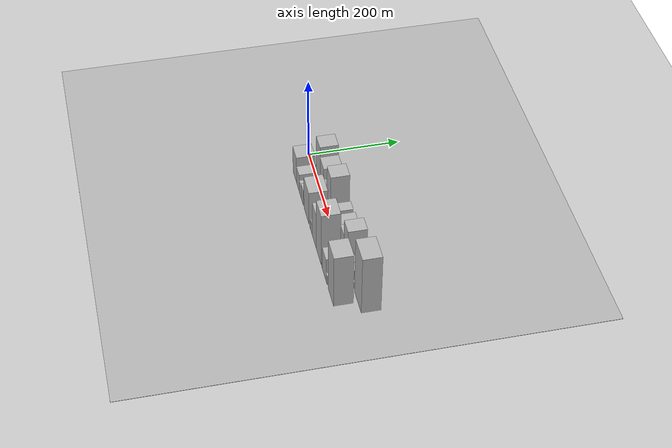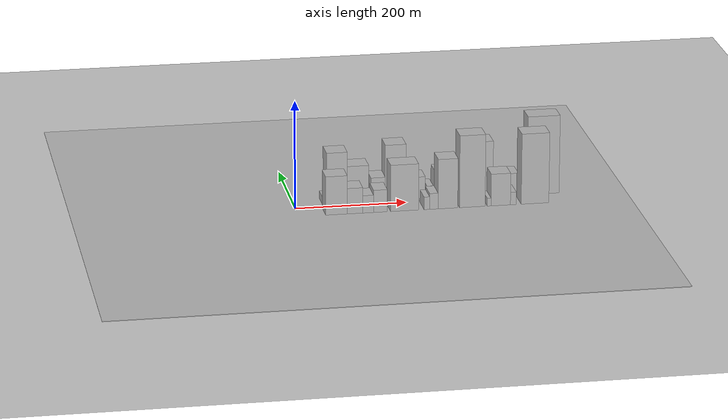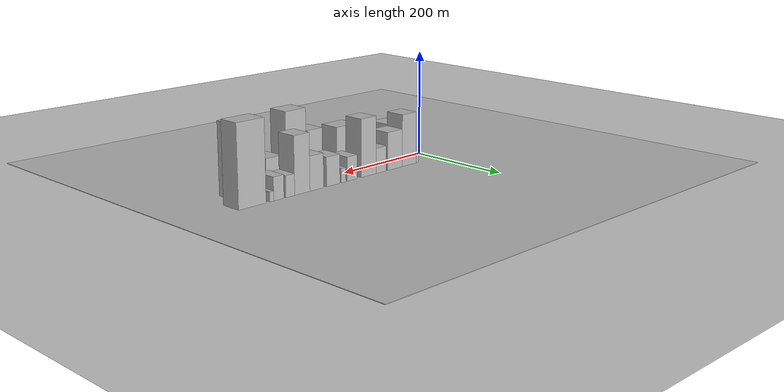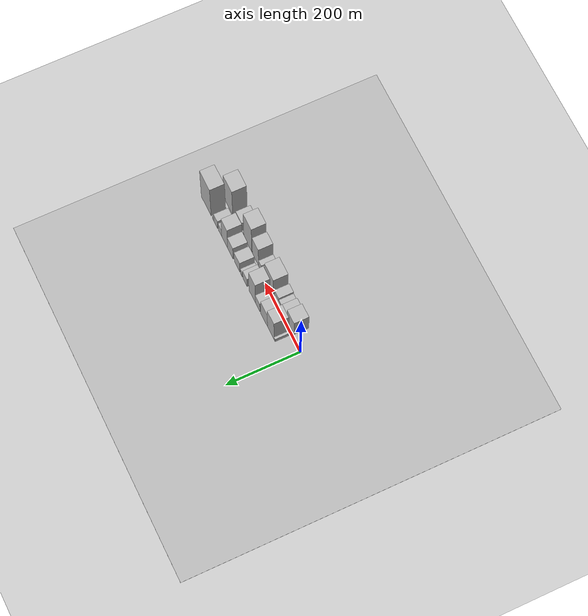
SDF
<?xml version="1.0" encoding="utf-8"?>

<sdf version="1.6">

   <world name="default">

      <gui fullscreen="0">

         <camera name="user_camera">

            <pose>-15 0 4.57585 0 0 0</pose>

            <view_controller>orbit</view_controller>

         </camera>

      </gui>

      <scene>

         <sky>

           <clouds>

             <speed>12</speed>

           </clouds>

         </sky>

         <ambient>0.4 0.4 0.4 1</ambient>

         <background>0.7 0.7 0.7 1</background>

         <shadows>1</shadows>

      </scene>

      <gravity>0 0 -9.8066</gravity>

      <magnetic_field>6e-06 2.3e-05 -4.2e-05</magnetic_field>

      <physics default="0" name="default_physics" type="ode">

         <ode>

            <solver>

               <type>quick</type>

               <iters>10</iters>

               <sor>1.0</sor>

               <use_dynamic_moi_rescaling>0</use_dynamic_moi_rescaling>

            </solver>

            <constraints>

               <cfm>0</cfm>

               <erp>0.2</erp>

               <contact_max_correcting_vel>100</contact_max_correcting_vel>

               <contact_surface_layer>0.001</contact_surface_layer>

            </constraints>

         </ode>

         <max_step_size>0.004</max_step_size>

         <real_time_factor>1</real_time_factor>

         <real_time_update_rate>250</real_time_update_rate>

      </physics>

      <light name="sun" type="directional">

         <cast_shadows>1</cast_shadows>

         <pose>0 0 10 0 0 0</pose>

         <diffuse>0.8 0.8 0.8 1</diffuse>

         <specular>0.2 0.2 0.2 1</specular>

         <attenuation>

            <range>1000</range>

            <constant>0.9</constant>

            <linear>0.01</linear>

            <quadratic>0.001</quadratic>

         </attenuation>

         <direction>-0.5 0.1 -0.9</direction>

      </light>

      <include>

         <name>ground_plane_1</name>

         <uri>model://HANNAS_ground_plane</uri>

         <pose>0 0 0  0 0 0</pose>

      </include>

      <include>

         <name>ground_plane_2</name>

         <uri>model://HANNAS_ground_plane</uri>

         <pose>100 0 0  0 0 0</pose>

      </include>

      <model name="building_1">

         <static>1</static>

         <pose frame="">53.3067 24.5000 0 0.000000 0.000000 1.570796</pose>

         <link name="link">

            <pose frame="">0 0 7.50 0 0 0</pose>

            <collision name="collision">

               <geometry>

                  <box>

                     <size>40.0000 6.6133 15.0000</size>

                  </box>

               </geometry>

               <max_contacts>10</max_contacts>

               <surface>

                  <contact>

                     <ode/>

                  </contact>

                  <bounce/>

                  <friction>

                     <torsional>

                        <ode/>

                     </torsional>

                     <ode/>

                  </friction>

               </surface>

            </collision>

            <visual name="visual">

               <cast_shadows>0</cast_shadows>

               <geometry>

                  <box>

                     <size>40.0000 6.6133 15.0000</size>

                  </box>

               </geometry>

               <material>

                  <script>

                     <uri>model://HANNAS_wall/materials/scripts</uri>

                     <uri>model://HANNAS_wall/materials/textures</uri>

                     <name>vrc/HANNAS_wall</name>

                  </script>

               </material>

            </visual>

            <self_collide>0</self_collide>

            <enable_wind>0</enable_wind>

            <kinematic>0</kinematic>

         </link>

      </model>

      <model name="building_2">

         <static>1</static>

         <pose frame="">75.3130 24.5000 0 0.000000 0.000000 1.570796</pose>

         <link name="link">

            <pose frame="">0 0 49.50 0 0 0</pose>

            <collision name="collision">

               <geometry>

                  <box>

                     <size>40.0000 37.3995 99.0000</size>

                  </box>

               </geometry>

               <max_contacts>10</max_contacts>

               <surface>

                  <contact>

                     <ode/>

                  </contact>

                  <bounce/>

                  <friction>

                     <torsional>

                        <ode/>

                     </torsional>

                     <ode/>

                  </friction>

               </surface>

            </collision>

            <visual name="visual">

               <cast_shadows>0</cast_shadows>

               <geometry>

                  <box>

                     <size>40.0000 37.3995 99.0000</size>

                  </box>

               </geometry>

               <material>

                  <script>

                     <uri>model://HANNAS_wall/materials/scripts</uri>

                     <uri>model://HANNAS_wall/materials/textures</uri>

                     <name>vrc/HANNAS_wall</name>

                  </script>

               </material>

            </visual>

            <self_collide>0</self_collide>

            <enable_wind>0</enable_wind>

            <kinematic>0</kinematic>

         </link>

      </model>

      <model name="building_3">

         <static>1</static>

         <pose frame="">113.3549 24.5000 0 0.000000 0.000000 1.570796</pose>

         <link name="link">

            <pose frame="">0 0 36.00 0 0 0</pose>

            <collision name="collision">

               <geometry>

                  <box>

                     <size>40.0000 38.6843 72.0000</size>

                  </box>

               </geometry>

               <max_contacts>10</max_contacts>

               <surface>

                  <contact>

                     <ode/>

                  </contact>

                  <bounce/>

                  <friction>

                     <torsional>

                        <ode/>

                     </torsional>

                     <ode/>

                  </friction>

               </surface>

            </collision>

            <visual name="visual">

               <cast_shadows>0</cast_shadows>

               <geometry>

                  <box>

                     <size>40.0000 38.6843 72.0000</size>

                  </box>

               </geometry>

               <material>

                  <script>

                     <uri>model://HANNAS_wall/materials/scripts</uri>

                     <uri>model://HANNAS_wall/materials/textures</uri>

                     <name>vrc/HANNAS_wall</name>

                  </script>

               </material>

            </visual>

            <self_collide>0</self_collide>

            <enable_wind>0</enable_wind>

            <kinematic>0</kinematic>

         </link>

      </model>

      <model name="building_4">

         <static>1</static>

         <pose frame="">149.6819 24.5000 0 0.000000 0.000000 1.570796</pose>

         <link name="link">

            <pose frame="">0 0 24.00 0 0 0</pose>

            <collision name="collision">

               <geometry>

                  <box>

                     <size>40.0000 25.9696 48.0000</size>

                  </box>

               </geometry>

               <max_contacts>10</max_contacts>

               <surface>

                  <contact>

                     <ode/>

                  </contact>

                  <bounce/>

                  <friction>

                     <torsional>

                        <ode/>

                     </torsional>

                     <ode/>

                  </friction>

               </surface>

            </collision>

            <visual name="visual">

               <cast_shadows>0</cast_shadows>

               <geometry>

                  <box>

                     <size>40.0000 25.9696 48.0000</size>

                  </box>

               </geometry>

               <material>

                  <script>

                     <uri>model://HANNAS_wall/materials/scripts</uri>

                     <uri>model://HANNAS_wall/materials/textures</uri>

                     <name>vrc/HANNAS_wall</name>

                  </script>

               </material>

            </visual>

            <self_collide>0</self_collide>

            <enable_wind>0</enable_wind>

            <kinematic>0</kinematic>

         </link>

      </model>

      <model name="building_5">

         <static>1</static>

         <pose frame="">181.3449 24.5000 0 0.000000 0.000000 1.570796</pose>

         <link name="link">

            <pose frame="">0 0 54.00 0 0 0</pose>

            <collision name="collision">

               <geometry>

                  <box>

                     <size>40.0000 37.3564 108.0000</size>

                  </box>

               </geometry>

               <max_contacts>10</max_contacts>

               <surface>

                  <contact>

                     <ode/>

                  </contact>

                  <bounce/>

                  <friction>

                     <torsional>

                        <ode/>

                     </torsional>

                     <ode/>

                  </friction>

               </surface>

            </collision>

            <visual name="visual">

               <cast_shadows>0</cast_shadows>

               <geometry>

                  <box>

                     <size>40.0000 37.3564 108.0000</size>

                  </box>

               </geometry>

               <material>

                  <script>

                     <uri>model://HANNAS_wall/materials/scripts</uri>

                     <uri>model://HANNAS_wall/materials/textures</uri>

                     <name>vrc/HANNAS_wall</name>

                  </script>

               </material>

            </visual>

            <self_collide>0</self_collide>

            <enable_wind>0</enable_wind>

            <kinematic>0</kinematic>

         </link>

      </model>

      <model name="building_6">

         <static>1</static>

         <pose frame="">222.6296 24.5000 0 0.000000 0.000000 1.570796</pose>

         <link name="link">

            <pose frame="">0 0 22.50 0 0 0</pose>

            <collision name="collision">

               <geometry>

                  <box>

                     <size>40.0000 25.2129 45.0000</size>

                  </box>

               </geometry>

               <max_contacts>10</max_contacts>

               <surface>

                  <contact>

                     <ode/>

                  </contact>

                  <bounce/>

                  <friction>

                     <torsional>

                        <ode/>

                     </torsional>

                     <ode/>

                  </friction>

               </surface>

            </collision>

            <visual name="visual">

               <cast_shadows>0</cast_shadows>

               <geometry>

                  <box>

                     <size>40.0000 25.2129 45.0000</size>

                  </box>

               </geometry>

               <material>

                  <script>

                     <uri>model://HANNAS_wall/materials/scripts</uri>

                     <uri>model://HANNAS_wall/materials/textures</uri>

                     <name>vrc/HANNAS_wall</name>

                  </script>

               </material>

            </visual>

            <self_collide>0</self_collide>

            <enable_wind>0</enable_wind>

            <kinematic>0</kinematic>

         </link>

      </model>

      <model name="building_7">

         <static>1</static>

         <pose frame="">243.9580 24.5000 0 0.000000 0.000000 1.570796</pose>

         <link name="link">

            <pose frame="">0 0 13.50 0 0 0</pose>

            <collision name="collision">

               <geometry>

                  <box>

                     <size>40.0000 11.4440 27.0000</size>

                  </box>

               </geometry>

               <max_contacts>10</max_contacts>

               <surface>

                  <contact>

                     <ode/>

                  </contact>

                  <bounce/>

                  <friction>

                     <torsional>

                        <ode/>

                     </torsional>

                     <ode/>

                  </friction>

               </surface>

            </collision>

            <visual name="visual">

               <cast_shadows>0</cast_shadows>

               <geometry>

                  <box>

                     <size>40.0000 11.4440 27.0000</size>

                  </box>

               </geometry>

               <material>

                  <script>

                     <uri>model://HANNAS_wall/materials/scripts</uri>

                     <uri>model://HANNAS_wall/materials/textures</uri>

                     <name>vrc/HANNAS_wall</name>

                  </script>

               </material>

            </visual>

            <self_collide>0</self_collide>

            <enable_wind>0</enable_wind>

            <kinematic>0</kinematic>

         </link>

      </model>

      <model name="building_8">

         <static>1</static>

         <pose frame="">268.6321 24.5000 0 0.000000 0.000000 1.570796</pose>

         <link name="link">

            <pose frame="">0 0 27.00 0 0 0</pose>

            <collision name="collision">

               <geometry>

                  <box>

                     <size>40.0000 31.9043 54.0000</size>

                  </box>

               </geometry>

               <max_contacts>10</max_contacts>

               <surface>

                  <contact>

                     <ode/>

                  </contact>

                  <bounce/>

                  <friction>

                     <torsional>

                        <ode/>

                     </torsional>

                     <ode/>

                  </friction>

               </surface>

            </collision>

            <visual name="visual">

               <cast_shadows>0</cast_shadows>

               <geometry>

                  <box>

                     <size>40.0000 31.9043 54.0000</size>

                  </box>

               </geometry>

               <material>

                  <script>

                     <uri>model://HANNAS_wall/materials/scripts</uri>

                     <uri>model://HANNAS_wall/materials/textures</uri>

                     <name>vrc/HANNAS_wall</name>

                  </script>

               </material>

            </visual>

            <self_collide>0</self_collide>

            <enable_wind>0</enable_wind>

            <kinematic>0</kinematic>

         </link>

      </model>

      <model name="building_9">

         <static>1</static>

         <pose frame="">307.5915 24.5000 0 0.000000 0.000000 1.570796</pose>

         <link name="link">

            <pose frame="">0 0 31.50 0 0 0</pose>

            <collision name="collision">

               <geometry>

                  <box>

                     <size>40.0000 32.0143 63.0000</size>

                  </box>

               </geometry>

               <max_contacts>10</max_contacts>

               <surface>

                  <contact>

                     <ode/>

                  </contact>

                  <bounce/>

                  <friction>

                     <torsional>

                        <ode/>

                     </torsional>

                     <ode/>

                  </friction>

               </surface>

            </collision>

            <visual name="visual">

               <cast_shadows>0</cast_shadows>

               <geometry>

                  <box>

                     <size>40.0000 32.0143 63.0000</size>

                  </box>

               </geometry>

               <material>

                  <script>

                     <uri>model://HANNAS_wall/materials/scripts</uri>

                     <uri>model://HANNAS_wall/materials/textures</uri>

                     <name>vrc/HANNAS_wall</name>

                  </script>

               </material>

            </visual>

            <self_collide>0</self_collide>

            <enable_wind>0</enable_wind>

            <kinematic>0</kinematic>

         </link>

      </model>

      <model name="building_10">

         <static>1</static>

         <pose frame="">340.9889 24.5000 0 0.000000 0.000000 1.570796</pose>

         <link name="link">

            <pose frame="">0 0 52.50 0 0 0</pose>

            <collision name="collision">

               <geometry>

                  <box>

                     <size>40.0000 34.7806 105.0000</size>

                  </box>

               </geometry>

               <max_contacts>10</max_contacts>

               <surface>

                  <contact>

                     <ode/>

                  </contact>

                  <bounce/>

                  <friction>

                     <torsional>

                        <ode/>

                     </torsional>

                     <ode/>

                  </friction>

               </surface>

            </collision>

            <visual name="visual">

               <cast_shadows>0</cast_shadows>

               <geometry>

                  <box>

                     <size>40.0000 34.7806 105.0000</size>

                  </box>

               </geometry>

               <material>

                  <script>

                     <uri>model://HANNAS_wall/materials/scripts</uri>

                     <uri>model://HANNAS_wall/materials/textures</uri>

                     <name>vrc/HANNAS_wall</name>

                  </script>

               </material>

            </visual>

            <self_collide>0</self_collide>

            <enable_wind>0</enable_wind>

            <kinematic>0</kinematic>

         </link>

      </model>

      <model name="building_11">

         <static>1</static>

         <pose frame="">368.2627 24.5000 0 0.000000 0.000000 1.570796</pose>

         <link name="link">

            <pose frame="">0 0 19.50 0 0 0</pose>

            <collision name="collision">

               <geometry>

                  <box>

                     <size>40.0000 19.7670 39.0000</size>

                  </box>

               </geometry>

               <max_contacts>10</max_contacts>

               <surface>

                  <contact>

                     <ode/>

                  </contact>

                  <bounce/>

                  <friction>

                     <torsional>

                        <ode/>

                     </torsional>

                     <ode/>

                  </friction>

               </surface>

            </collision>

            <visual name="visual">

               <cast_shadows>0</cast_shadows>

               <geometry>

                  <box>

                     <size>40.0000 19.7670 39.0000</size>

                  </box>

               </geometry>

               <material>

                  <script>

                     <uri>model://HANNAS_wall/materials/scripts</uri>

                     <uri>model://HANNAS_wall/materials/textures</uri>

                     <name>vrc/HANNAS_wall</name>

                  </script>

               </material>

            </visual>

            <self_collide>0</self_collide>

            <enable_wind>0</enable_wind>

            <kinematic>0</kinematic>

         </link>

      </model>

      <model name="building_12">

         <static>1</static>

         <pose frame="">393.4490 24.5000 0 0.000000 0.000000 1.570796</pose>

         <link name="link">

            <pose frame="">0 0 21.00 0 0 0</pose>

            <collision name="collision">

               <geometry>

                  <box>

                     <size>40.0000 22.6056 42.0000</size>

                  </box>

               </geometry>

               <max_contacts>10</max_contacts>

               <surface>

                  <contact>

                     <ode/>

                  </contact>

                  <bounce/>

                  <friction>

                     <torsional>

                        <ode/>

                     </torsional>

                     <ode/>

                  </friction>

               </surface>

            </collision>

            <visual name="visual">

               <cast_shadows>0</cast_shadows>

               <geometry>

                  <box>

                     <size>40.0000 22.6056 42.0000</size>

                  </box>

               </geometry>

               <material>

                  <script>

                     <uri>model://HANNAS_wall/materials/scripts</uri>

                     <uri>model://HANNAS_wall/materials/textures</uri>

                     <name>vrc/HANNAS_wall</name>

                  </script>

               </material>

            </visual>

            <self_collide>0</self_collide>

            <enable_wind>0</enable_wind>

            <kinematic>0</kinematic>

         </link>

      </model>

      <model name="building_13">

         <static>1</static>

         <pose frame="">408.9536 24.5000 0 0.000000 0.000000 1.570796</pose>

         <link name="link">

            <pose frame="">0 0 9.00 0 0 0</pose>

            <collision name="collision">

               <geometry>

                  <box>

                     <size>40.0000 8.4036 18.0000</size>

                  </box>

               </geometry>

               <max_contacts>10</max_contacts>

               <surface>

                  <contact>

                     <ode/>

                  </contact>

                  <bounce/>

                  <friction>

                     <torsional>

                        <ode/>

                     </torsional>

                     <ode/>

                  </friction>

               </surface>

            </collision>

            <visual name="visual">

               <cast_shadows>0</cast_shadows>

               <geometry>

                  <box>

                     <size>40.0000 8.4036 18.0000</size>

                  </box>

               </geometry>

               <material>

                  <script>

                     <uri>model://HANNAS_wall/materials/scripts</uri>

                     <uri>model://HANNAS_wall/materials/textures</uri>

                     <name>vrc/HANNAS_wall</name>

                  </script>

               </material>

            </visual>

            <self_collide>0</self_collide>

            <enable_wind>0</enable_wind>

            <kinematic>0</kinematic>

         </link>

      </model>

      <model name="building_14">

         <static>1</static>

         <pose frame="">450.2723 24.5000 0 0.000000 0.000000 1.570796</pose>

         <link name="link">

            <pose frame="">0 0 73.50 0 0 0</pose>

            <collision name="collision">

               <geometry>

                  <box>

                     <size>40.0000 58.2338 147.0000</size>

                  </box>

               </geometry>

               <max_contacts>10</max_contacts>

               <surface>

                  <contact>

                     <ode/>

                  </contact>

                  <bounce/>

                  <friction>

                     <torsional>

                        <ode/>

                     </torsional>

                     <ode/>

                  </friction>

               </surface>

            </collision>

            <visual name="visual">

               <cast_shadows>0</cast_shadows>

               <geometry>

                  <box>

                     <size>40.0000 58.2338 147.0000</size>

                  </box>

               </geometry>

               <material>

                  <script>

                     <uri>model://HANNAS_wall/materials/scripts</uri>

                     <uri>model://HANNAS_wall/materials/textures</uri>

                     <name>vrc/HANNAS_wall</name>

                  </script>

               </material>

            </visual>

            <self_collide>0</self_collide>

            <enable_wind>0</enable_wind>

            <kinematic>0</kinematic>

         </link>

      </model>

      <model name="building_15">

         <static>1</static>

         <pose frame="">66.4160 -24.5000 0 0.000000 0.000000 1.570796</pose>

         <link name="link">

            <pose frame="">0 0 36.00 0 0 0</pose>

            <collision name="collision">

               <geometry>

                  <box>

                     <size>40.0000 38.8320 72.0000</size>

                  </box>

               </geometry>

               <max_contacts>10</max_contacts>

               <surface>

                  <contact>

                     <ode/>

                  </contact>

                  <bounce/>

                  <friction>

                     <torsional>

                        <ode/>

                     </torsional>

                     <ode/>

                  </friction>

               </surface>

            </collision>

            <visual name="visual">

               <cast_shadows>0</cast_shadows>

               <geometry>

                  <box>

                     <size>40.0000 38.8320 72.0000</size>

                  </box>

               </geometry>

               <material>

                  <script>

                     <uri>model://HANNAS_wall/materials/scripts</uri>

                     <uri>model://HANNAS_wall/materials/textures</uri>

                     <name>vrc/HANNAS_wall</name>

                  </script>

               </material>

            </visual>

            <self_collide>0</self_collide>

            <enable_wind>0</enable_wind>

            <kinematic>0</kinematic>

         </link>

      </model>

      <model name="building_16">

         <static>1</static>

         <pose frame="">99.6574 -24.5000 0 0.000000 0.000000 1.570796</pose>

         <link name="link">

            <pose frame="">0 0 24.00 0 0 0</pose>

            <collision name="collision">

               <geometry>

                  <box>

                     <size>40.0000 27.6507 48.0000</size>

                  </box>

               </geometry>

               <max_contacts>10</max_contacts>

               <surface>

                  <contact>

                     <ode/>

                  </contact>

                  <bounce/>

                  <friction>

                     <torsional>

                        <ode/>

                     </torsional>

                     <ode/>

                  </friction>

               </surface>

            </collision>

            <visual name="visual">

               <cast_shadows>0</cast_shadows>

               <geometry>

                  <box>

                     <size>40.0000 27.6507 48.0000</size>

                  </box>

               </geometry>

               <material>

                  <script>

                     <uri>model://HANNAS_wall/materials/scripts</uri>

                     <uri>model://HANNAS_wall/materials/textures</uri>

                     <name>vrc/HANNAS_wall</name>

                  </script>

               </material>

            </visual>

            <self_collide>0</self_collide>

            <enable_wind>0</enable_wind>

            <kinematic>0</kinematic>

         </link>

      </model>

      <model name="building_17">

         <static>1</static>

         <pose frame="">123.1968 -24.5000 0 0.000000 0.000000 1.570796</pose>

         <link name="link">

            <pose frame="">0 0 16.50 0 0 0</pose>

            <collision name="collision">

               <geometry>

                  <box>

                     <size>40.0000 19.4282 33.0000</size>

                  </box>

               </geometry>

               <max_contacts>10</max_contacts>

               <surface>

                  <contact>

                     <ode/>

                  </contact>

                  <bounce/>

                  <friction>

                     <torsional>

                        <ode/>

                     </torsional>

                     <ode/>

                  </friction>

               </surface>

            </collision>

            <visual name="visual">

               <cast_shadows>0</cast_shadows>

               <geometry>

                  <box>

                     <size>40.0000 19.4282 33.0000</size>

                  </box>

               </geometry>

               <material>

                  <script>

                     <uri>model://HANNAS_wall/materials/scripts</uri>

                     <uri>model://HANNAS_wall/materials/textures</uri>

                     <name>vrc/HANNAS_wall</name>

                  </script>

               </material>

            </visual>

            <self_collide>0</self_collide>

            <enable_wind>0</enable_wind>

            <kinematic>0</kinematic>

         </link>

      </model>

      <model name="building_18">

         <static>1</static>

         <pose frame="">145.2508 -24.5000 0 0.000000 0.000000 1.570796</pose>

         <link name="link">

            <pose frame="">0 0 21.00 0 0 0</pose>

            <collision name="collision">

               <geometry>

                  <box>

                     <size>40.0000 24.6797 42.0000</size>

                  </box>

               </geometry>

               <max_contacts>10</max_contacts>

               <surface>

                  <contact>

                     <ode/>

                  </contact>

                  <bounce/>

                  <friction>

                     <torsional>

                        <ode/>

                     </torsional>

                     <ode/>

                  </friction>

               </surface>

            </collision>

            <visual name="visual">

               <cast_shadows>0</cast_shadows>

               <geometry>

                  <box>

                     <size>40.0000 24.6797 42.0000</size>

                  </box>

               </geometry>

               <material>

                  <script>

                     <uri>model://HANNAS_wall/materials/scripts</uri>

                     <uri>model://HANNAS_wall/materials/textures</uri>

                     <name>vrc/HANNAS_wall</name>

                  </script>

               </material>

            </visual>

            <self_collide>0</self_collide>

            <enable_wind>0</enable_wind>

            <kinematic>0</kinematic>

         </link>

      </model>

      <model name="building_19">

         <static>1</static>

         <pose frame="">188.7232 -24.5000 0 0.000000 0.000000 1.570796</pose>

         <link name="link">

            <pose frame="">0 0 43.50 0 0 0</pose>

            <collision name="collision">

               <geometry>

                  <box>

                     <size>40.0000 50.2651 87.0000</size>

                  </box>

               </geometry>

               <max_contacts>10</max_contacts>

               <surface>

                  <contact>

                     <ode/>

                  </contact>

                  <bounce/>

                  <friction>

                     <torsional>

                        <ode/>

                     </torsional>

                     <ode/>

                  </friction>

               </surface>

            </collision>

            <visual name="visual">

               <cast_shadows>0</cast_shadows>

               <geometry>

                  <box>

                     <size>40.0000 50.2651 87.0000</size>

                  </box>

               </geometry>

               <material>

                  <script>

                     <uri>model://HANNAS_wall/materials/scripts</uri>

                     <uri>model://HANNAS_wall/materials/textures</uri>

                     <name>vrc/HANNAS_wall</name>

                  </script>

               </material>

            </visual>

            <self_collide>0</self_collide>

            <enable_wind>0</enable_wind>

            <kinematic>0</kinematic>

         </link>

      </model>

      <model name="building_20">

         <static>1</static>

         <pose frame="">228.8500 -24.5000 0 0.000000 0.000000 1.570796</pose>

         <link name="link">

            <pose frame="">0 0 12.00 0 0 0</pose>

            <collision name="collision">

               <geometry>

                  <box>

                     <size>40.0000 9.9884 24.0000</size>

                  </box>

               </geometry>

               <max_contacts>10</max_contacts>

               <surface>

                  <contact>

                     <ode/>

                  </contact>

                  <bounce/>

                  <friction>

                     <torsional>

                        <ode/>

                     </torsional>

                     <ode/>

                  </friction>

               </surface>

            </collision>

            <visual name="visual">

               <cast_shadows>0</cast_shadows>

               <geometry>

                  <box>

                     <size>40.0000 9.9884 24.0000</size>

                  </box>

               </geometry>

               <material>

                  <script>

                     <uri>model://HANNAS_wall/materials/scripts</uri>

                     <uri>model://HANNAS_wall/materials/textures</uri>

                     <name>vrc/HANNAS_wall</name>

                  </script>

               </material>

            </visual>

            <self_collide>0</self_collide>

            <enable_wind>0</enable_wind>

            <kinematic>0</kinematic>

         </link>

      </model>

      <model name="building_21">

         <static>1</static>

         <pose frame="">241.5247 -24.5000 0 0.000000 0.000000 1.570796</pose>

         <link name="link">

            <pose frame="">0 0 15.00 0 0 0</pose>

            <collision name="collision">

               <geometry>

                  <box>

                     <size>40.0000 15.3610 30.0000</size>

                  </box>

               </geometry>

               <max_contacts>10</max_contacts>

               <surface>

                  <contact>

                     <ode/>

                  </contact>

                  <bounce/>

                  <friction>

                     <torsional>

                        <ode/>

                     </torsional>

                     <ode/>

                  </friction>

               </surface>

            </collision>

            <visual name="visual">

               <cast_shadows>0</cast_shadows>

               <geometry>

                  <box>

                     <size>40.0000 15.3610 30.0000</size>

                  </box>

               </geometry>

               <material>

                  <script>

                     <uri>model://HANNAS_wall/materials/scripts</uri>

                     <uri>model://HANNAS_wall/materials/textures</uri>

                     <name>vrc/HANNAS_wall</name>

                  </script>

               </material>

            </visual>

            <self_collide>0</self_collide>

            <enable_wind>0</enable_wind>

            <kinematic>0</kinematic>

         </link>

      </model>

      <model name="building_22">

         <static>1</static>

         <pose frame="">267.0844 -24.5000 0 0.000000 0.000000 1.570796</pose>

         <link name="link">

            <pose frame="">0 0 46.50 0 0 0</pose>

            <collision name="collision">

               <geometry>

                  <box>

                     <size>40.0000 35.7584 93.0000</size>

                  </box>

               </geometry>

               <max_contacts>10</max_contacts>

               <surface>

                  <contact>

                     <ode/>

                  </contact>

                  <bounce/>

                  <friction>

                     <torsional>

                        <ode/>

                     </torsional>

                     <ode/>

                  </friction>

               </surface>

            </collision>

            <visual name="visual">

               <cast_shadows>0</cast_shadows>

               <geometry>

                  <box>

                     <size>40.0000 35.7584 93.0000</size>

                  </box>

               </geometry>

               <material>

                  <script>

                     <uri>model://HANNAS_wall/materials/scripts</uri>

                     <uri>model://HANNAS_wall/materials/textures</uri>

                     <name>vrc/HANNAS_wall</name>

                  </script>

               </material>

            </visual>

            <self_collide>0</self_collide>

            <enable_wind>0</enable_wind>

            <kinematic>0</kinematic>

         </link>

      </model>

      <model name="building_23">

         <static>1</static>

         <pose frame="">311.2142 -24.5000 0 0.000000 0.000000 1.570796</pose>

         <link name="link">

            <pose frame="">0 0 67.50 0 0 0</pose>

            <collision name="collision">

               <geometry>

                  <box>

                     <size>40.0000 46.5012 135.0000</size>

                  </box>

               </geometry>

               <max_contacts>10</max_contacts>

               <surface>

                  <contact>

                     <ode/>

                  </contact>

                  <bounce/>

                  <friction>

                     <torsional>

                        <ode/>

                     </torsional>

                     <ode/>

                  </friction>

               </surface>

            </collision>

            <visual name="visual">

               <cast_shadows>0</cast_shadows>

               <geometry>

                  <box>

                     <size>40.0000 46.5012 135.0000</size>

                  </box>

               </geometry>

               <material>

                  <script>

                     <uri>model://HANNAS_wall/materials/scripts</uri>

                     <uri>model://HANNAS_wall/materials/textures</uri>

                     <name>vrc/HANNAS_wall</name>

                  </script>

               </material>

            </visual>

            <self_collide>0</self_collide>

            <enable_wind>0</enable_wind>

            <kinematic>0</kinematic>

         </link>

      </model>

      <model name="building_24">

         <static>1</static>

         <pose frame="">341.8339 -24.5000 0 0.000000 0.000000 1.570796</pose>

         <link name="link">

            <pose frame="">0 0 7.50 0 0 0</pose>

            <collision name="collision">

               <geometry>

                  <box>

                     <size>40.0000 6.7383 15.0000</size>

                  </box>

               </geometry>

               <max_contacts>10</max_contacts>

               <surface>

                  <contact>

                     <ode/>

                  </contact>

                  <bounce/>

                  <friction>

                     <torsional>

                        <ode/>

                     </torsional>

                     <ode/>

                  </friction>

               </surface>

            </collision>

            <visual name="visual">

               <cast_shadows>0</cast_shadows>

               <geometry>

                  <box>

                     <size>40.0000 6.7383 15.0000</size>

                  </box>

               </geometry>

               <material>

                  <script>

                     <uri>model://HANNAS_wall/materials/scripts</uri>

                     <uri>model://HANNAS_wall/materials/textures</uri>

                     <name>vrc/HANNAS_wall</name>

                  </script>

               </material>

            </visual>

            <self_collide>0</self_collide>

            <enable_wind>0</enable_wind>

            <kinematic>0</kinematic>

         </link>

      </model>

      <model name="building_25">

         <static>1</static>

         <pose frame="">362.7840 -24.5000 0 0.000000 0.000000 1.570796</pose>

         <link name="link">

            <pose frame="">0 0 30.00 0 0 0</pose>

            <collision name="collision">

               <geometry>

                  <box>

                     <size>40.0000 35.1619 60.0000</size>

                  </box>

               </geometry>

               <max_contacts>10</max_contacts>

               <surface>

                  <contact>

                     <ode/>

                  </contact>

                  <bounce/>

                  <friction>

                     <torsional>

                        <ode/>

                     </torsional>

                     <ode/>

                  </friction>

               </surface>

            </collision>

            <visual name="visual">

               <cast_shadows>0</cast_shadows>

               <geometry>

                  <box>

                     <size>40.0000 35.1619 60.0000</size>

                  </box>

               </geometry>

               <material>

                  <script>

                     <uri>model://HANNAS_wall/materials/scripts</uri>

                     <uri>model://HANNAS_wall/materials/textures</uri>

                     <name>vrc/HANNAS_wall</name>

                  </script>

               </material>

            </visual>

            <self_collide>0</self_collide>

            <enable_wind>0</enable_wind>

            <kinematic>0</kinematic>

         </link>

      </model>

      <model name="building_26">

         <static>1</static>

         <pose frame="">385.6563 -24.5000 0 0.000000 0.000000 1.570796</pose>

         <link name="link">

            <pose frame="">0 0 12.00 0 0 0</pose>

            <collision name="collision">

               <geometry>

                  <box>

                     <size>40.0000 10.5826 24.0000</size>

                  </box>

               </geometry>

               <max_contacts>10</max_contacts>

               <surface>

                  <contact>

                     <ode/>

                  </contact>

                  <bounce/>

                  <friction>

                     <torsional>

                        <ode/>

                     </torsional>

                     <ode/>

                  </friction>

               </surface>

            </collision>

            <visual name="visual">

               <cast_shadows>0</cast_shadows>

               <geometry>

                  <box>

                     <size>40.0000 10.5826 24.0000</size>

                  </box>

               </geometry>

               <material>

                  <script>

                     <uri>model://HANNAS_wall/materials/scripts</uri>

                     <uri>model://HANNAS_wall/materials/textures</uri>

                     <name>vrc/HANNAS_wall</name>

                  </script>

               </material>

            </visual>

            <self_collide>0</self_collide>

            <enable_wind>0</enable_wind>

            <kinematic>0</kinematic>

         </link>

      </model>

      <model name="building_27">

         <static>1</static>

         <pose frame="">425.0647 -24.5000 0 0.000000 0.000000 1.570796</pose>

         <link name="link">

            <pose frame="">0 0 66.00 0 0 0</pose>

            <collision name="collision">

               <geometry>

                  <box>

                     <size>40.0000 50.2343 132.0000</size>

                  </box>

               </geometry>

               <max_contacts>10</max_contacts>

               <surface>

                  <contact>

                     <ode/>

                  </contact>

                  <bounce/>

                  <friction>

                     <torsional>

                        <ode/>

                     </torsional>

                     <ode/>

                  </friction>

               </surface>

            </collision>

            <visual name="visual">

               <cast_shadows>0</cast_shadows>

               <geometry>

                  <box>

                     <size>40.0000 50.2343 132.0000</size>

                  </box>

               </geometry>

               <material>

                  <script>

                     <uri>model://HANNAS_wall/materials/scripts</uri>

                     <uri>model://HANNAS_wall/materials/textures</uri>

                     <name>vrc/HANNAS_wall</name>

                  </script>

               </material>

            </visual>

            <self_collide>0</self_collide>

            <enable_wind>0</enable_wind>

            <kinematic>0</kinematic>

         </link>

      </model>

   </world>

</sdf>

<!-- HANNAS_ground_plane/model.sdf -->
<sdf version="1.4">
<model name="HANNAS_ground_plane">
  <static>true</static>
    <link name="link">
      <collision name="collision">
        <geometry>
          <plane>
            <normal>0 0 1</normal>
            <size>1000 1000</size>
          </plane>
        </geometry>
        <surface>
          <friction>
            <ode>
              <mu>100</mu>
              <mu2>50</mu2>
            </ode>
          </friction>
        </surface>
      </collision>
      <visual name="visual">
        <cast_shadows>false</cast_shadows>
        <geometry>
          <plane>
            <normal>0 0 1</normal>
            <size>1000 1000</size>
          </plane>
        </geometry>
        <material>
          <script>
            <uri>model://HANNAS_ground_plane/materials/scripts/HANNAS_ground_plane.material</uri>
	    <uri>model://HANNAS_ground_plane/materials/textures</uri>
            <name>HANNASGroundPlane/Image</name>
          </script>
        </material>
      </visual>
    </link>
  </model>
</sdf>
